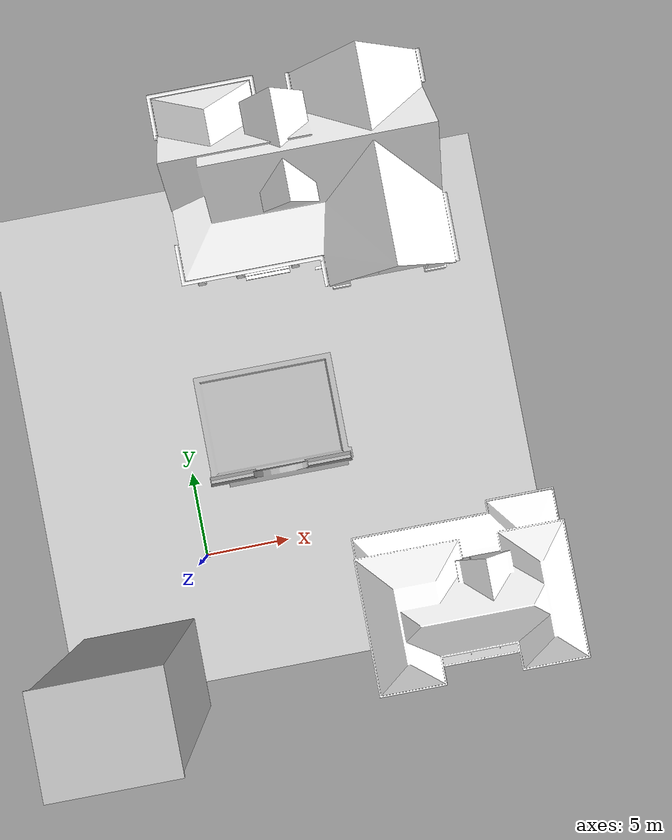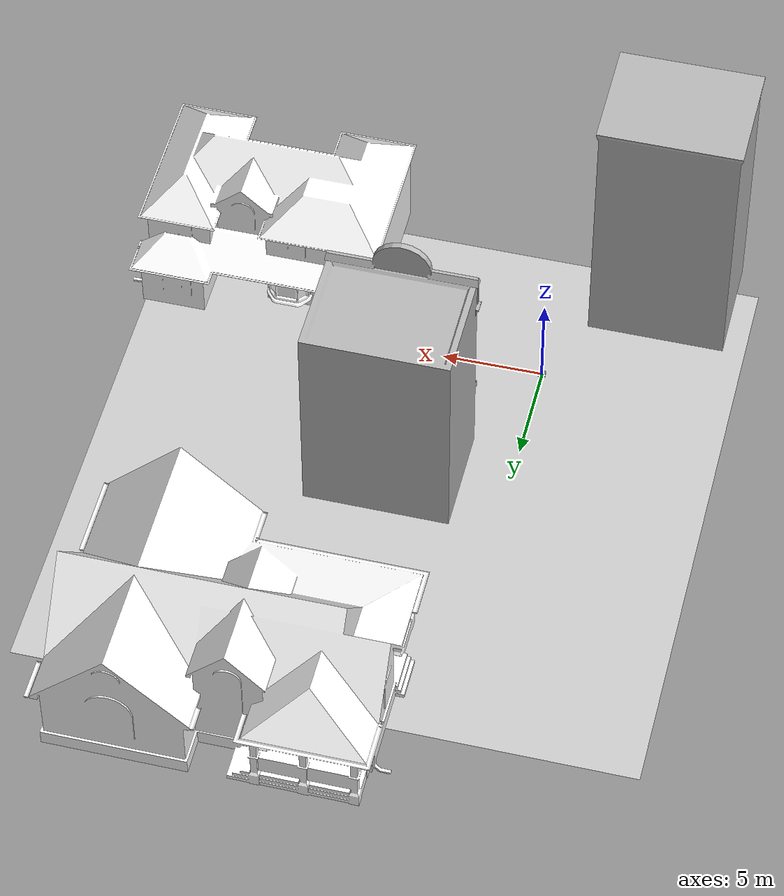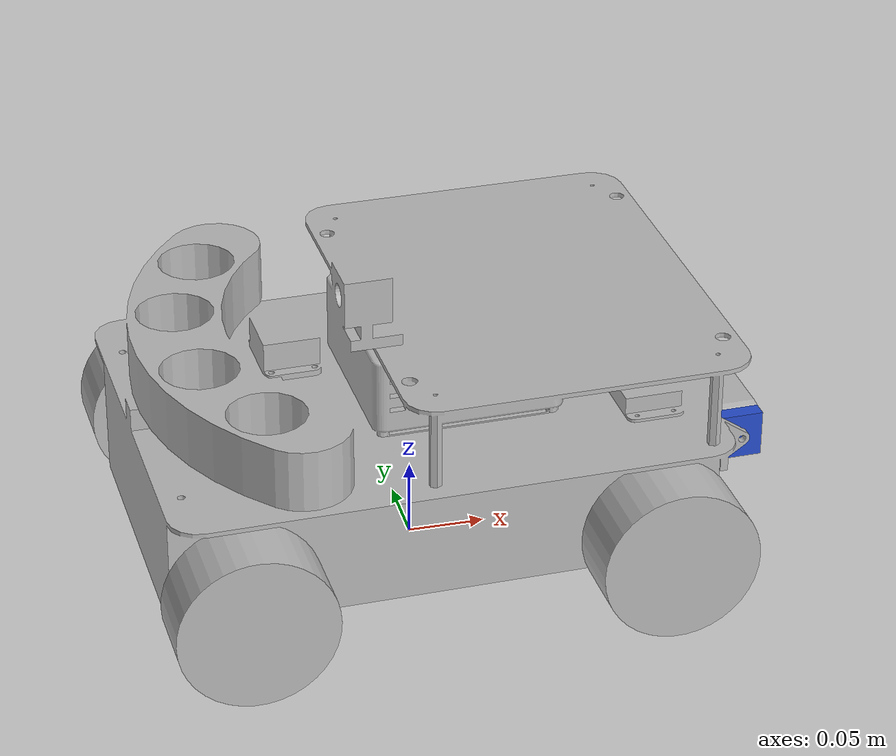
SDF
<sdf version="1.7">
 <world name="default">
  <light name="sun" type="directional">
   <pose>0 0 10 0 -0 0</pose>
   <diffuse>0.8 0.8 0.8 1</diffuse>
   <specular>0.2 0.2 0.2 1</specular>
   <attenuation>
    <range>1000</range>
    <constant>0.9</constant>
    <linear>0.01</linear>
    <quadratic>0.001</quadratic>
   </attenuation>
   <direction>-0.5 0.1 -0.9</direction>
   <spot><inner_angle>0</inner_angle><outer_angle>0</outer_angle><falloff>0</falloff></spot>
  </light>
  <gravity>0 0 -9.8</gravity>
  <magnetic_field>6e-06 2.3e-05 -4.2e-05</magnetic_field>
  <atmosphere type="adiabatic"/>
  <physics type="ode">
   <max_step_size>0.001</max_step_size>
   <real_time_factor>1</real_time_factor>
   <real_time_update_rate>1000</real_time_update_rate>
  </physics>
  <scene><ambient>0.4 0.4 0.4 1</ambient><background>0.7 0.7 0.7 1</background><shadows>1</shadows></scene>
  <spherical_coordinates>
   <surface_model>EARTH_WGS84</surface_model>
   <latitude_deg>0</latitude_deg>
   <longitude_deg>0</longitude_deg>
   <elevation>0</elevation>
   <heading_deg>0</heading_deg>
  </spherical_coordinates>
  <model name="my_ground_plane">
   <static>1</static>
   <link name="link">
    <collision name="collision">
     <geometry><plane><normal>0 0 1</normal><size>10000 10000</size></plane></geometry>
     <surface><friction><ode><mu>100</mu><mu2>50</mu2></ode></friction></surface>
    </collision>
    <visual name="visual">
     <cast_shadows>0</cast_shadows>
     <geometry><plane><normal>0 0 1</normal><size>30 30</size></plane></geometry>
     <material>
      <script>
       <uri>model://my_ground_plane/materials/scripts</uri>
       <uri>model://my_ground_plane/materials/textures/</uri>
       <name>MyGroundPlane/Image</name>
      </script>
     </material>
    </visual>
   </link>
   <pose>5.49276 7.39463 0 0 -0 0</pose>
  </model>
  <model name="law_office">
   <static>1</static>
   <link name="link">
    <collision name="collision">
     <pose>0 0 6.96244 0 -0 0</pose>
     <geometry><box><size>6.84401 5.43165 13.9249</size></box></geometry>
    </collision>
    <visual name="visual">
     <geometry><mesh><uri>model://law_office/meshes/law_office.dae</uri></mesh></geometry>
    </visual>
   </link>
   <pose>-4.97303 -6.37371 0 0 -0 0</pose>
  </model>
  <model name="House 1">
   <static>1</static>
   <link name="link">
    <collision name="collision">
     <geometry><mesh><uri>model://house_1/meshes/house_1.dae</uri><scale>1.5 1.5 1.5</scale></mesh></geometry>
    </collision>
    <visual name="visual">
     <geometry><mesh><uri>model://house_1/meshes/house_1.dae</uri><scale>1.5 1.5 1.5</scale></mesh></geometry>
     <material>
      <script>
       <uri>model://house_1/materials/scripts</uri>
       <uri>model://house_1/materials/textures</uri>
       <name>House_1/Diffuse</name>
      </script>
      <shader type="normal_map_tangent_space"><normal_map>House_1_Normal.png</normal_map></shader>
     </material>
    </visual>
   </link>
   <pose>10.2125 21.1847 0 0 -0 0</pose>
  </model>
  <model name="House 2">
   <static>1</static>
   <link name="link">
    <collision name="collision">
     <geometry><mesh><uri>model://house_2/meshes/house_2.dae</uri><scale>1.5 1.5 1.5</scale></mesh></geometry>
    </collision>
    <visual name="visual">
     <geometry><mesh><uri>model://house_2/meshes/house_2.dae</uri><scale>1.5 1.5 1.5</scale></mesh></geometry>
     <material>
      <script>
       <uri>model://house_2/materials/scripts</uri>
       <uri>model://house_2/materials/textures</uri>
       <uri>model://house_1/materials/textures</uri>
       <name>House_2/Diffuse</name>
      </script>
      <shader type="normal_map_tangent_space">
       <normal_map>model://house_1/materials/textures/House_1_Normal.png</normal_map>
      </shader>
     </material>
    </visual>
   </link>
   <pose>13.8461 -5.31219 0 0 -0 0</pose>
  </model>
  <model name="thrift_shop">
   <static>1</static>
   <link name="link">
    <collision name="collision">
     <pose>0 0 5.69469 0 -0 0</pose>
     <geometry><box><size>7.21297 5.43165 11.3894</size></box></geometry>
    </collision>
    <visual name="visual">
     <pose>0 -0.912491 0 0 -0 0</pose>
     <geometry><mesh><uri>model://thrift_shop/meshes/thrift_shop.dae</uri></mesh></geometry>
    </visual>
   </link>
   <pose>5.95316 7.47278 0 0 -0 0</pose>
  </model>
  <model name="mycar">
   <link name="base_link">
    <inertial>
     <pose>0.032797 0.00331 0.087722 0 -0 0</pose>
     <mass>16.738</mass>
     <inertia>
      <ixx>0.0634912</ixx>
      <ixy>8.58846e-06</ixy>
      <ixz>2.0403e-05</ixz>
      <iyy>0.105707</iyy>
      <iyz>-4.04125e-06</iyz>
      <izz>0.158135</izz>
     </inertia>
    </inertial>
    <collision name="base_link_collision">
     <geometry>
      <mesh><scale>1 1 1</scale><uri>/home/zyh973/catkin_car/src/car_model/meshes/base_link.STL</uri></mesh>
     </geometry>
    </collision>
    <collision name="base_link_fixed_joint_lump__camera_collision_1">
     <pose>0.1935 0 0.072 0 -0 0</pose>
     <geometry><box><size>0.033 0.175 0.03</size></box></geometry>
    </collision>
    <visual name="base_link_visual">
     <geometry>
      <mesh><scale>1 1 1</scale><uri>/home/zyh973/catkin_car/src/car_model/meshes/base_link.STL</uri></mesh>
     </geometry>
    </visual>
    <visual name="base_link_fixed_joint_lump__camera_visual_1">
     <pose>0.1935 0 0.072 0 -0 0</pose>
     <geometry><box><size>0.033 0.175 0.03</size></box></geometry>
     <material>
      <script><name>Gazebo/Blue</name><uri>file://media/materials/scripts/gazebo.material</uri></script>
     </material>
    </visual>
    <visual name="base_link_fixed_joint_lump__support_visual_2">
     <geometry><cylinder><length>0</length><radius>0</radius></cylinder></geometry>
    </visual>
    <visual name="base_link_fixed_joint_lump__laser_visual_3">
     <pose>0.1345 0.035 0.1127 0 -0 0</pose>
     <geometry><cylinder><length>0.0452</length><radius>0.0355</radius></cylinder></geometry>
    </visual>
    <sensor name="camera_node" type="camera">
     <update_rate>30</update_rate>
     <camera name="head">
      <horizontal_fov>1.39626</horizontal_fov>
      <image><width>1280</width><height>720</height><format>R8G8B8</format></image>
      <clip><near>0.02</near><far>300</far></clip>
      <noise><type>gaussian</type><mean>0</mean><stddev>0.007</stddev></noise>
     </camera>
     <plugin name="gazebo_camera" filename="libgazebo_ros_camera.so">
      <alwaysOn>1</alwaysOn>
      <updateRate>0.0</updateRate>
      <cameraName>/camera</cameraName>
      <imageTopicName>image_raw</imageTopicName>
      <cameraInfoTopicName>camera_info</cameraInfoTopicName>
      <frameName>camera</frameName>
      <hackBaseline>0.07</hackBaseline>
      <distortionK1>0.0</distortionK1>
      <distortionK2>0.0</distortionK2>
      <distortionK3>0.0</distortionK3>
      <distortionT1>0.0</distortionT1>
      <distortionT2>0.0</distortionT2>
      <robotNamespace>/</robotNamespace>
     </plugin>
     <pose>0.1935 0 0.072 0 -0 0</pose>
    </sensor>
    <sensor name="rplidar" type="ray">
     <visualize>1</visualize>
     <update_rate>5.5</update_rate>
     <ray>
      <scan>
       <horizontal>
        <samples>64</samples>
        <resolution>1</resolution>
        <min_angle>-3</min_angle>
        <max_angle>3</max_angle>
       </horizontal>
       <vertical><samples>1</samples><min_angle>0</min_angle><max_angle>0</max_angle></vertical>
      </scan>
      <range><min>0.1</min><max>30</max><resolution>0.01</resolution></range>
      <noise><type>gaussian</type><mean>0</mean><stddev>0.01</stddev></noise>
     </ray>
     <plugin name="gazebo_rplidar" filename="libgazebo_ros_laser.so">
      <topicName>/scan</topicName>
      <frameName>laser</frameName>
      <robotNamespace>/</robotNamespace>
     </plugin>
     <pose>0.1345 0.035 0.1127 0 -0 0</pose>
    </sensor>
   </link>
   <joint name="wheel_lb_joint" type="revolute">
    <pose relative_to="base_link">-0.134 0.15675 0.0278 0 -0 0</pose>
    <parent>base_link</parent>
    <child>wheel_lb_Link</child>
    <axis>
     <xyz>0 -1 0</xyz>
     <limit><lower>-1e+16</lower><upper>1e+16</upper></limit>
     <dynamics><spring_reference>0</spring_reference><spring_stiffness>0</spring_stiffness></dynamics>
    </axis>
   </joint>
   <link name="wheel_lb_Link">
    <pose relative_to="wheel_lb_joint">0 0 0 0 -0 0</pose>
    <inertial>
     <pose>-0 -0.02275 0 0 -0 0</pose>
     <mass>2.8773</mass>
     <inertia>
      <ixx>0.0023527</ixx>
      <ixy>1.0128e-17</ixy>
      <ixz>-3.5376e-32</ixz>
      <iyy>0.0037126</iyy>
      <iyz>-4.7481e-18</iyz>
      <izz>0.0023527</izz>
     </inertia>
    </inertial>
    <collision name="wheel_lb_Link_collision">
     <geometry>
      <mesh><scale>1 1 1</scale><uri>/home/zyh973/catkin_car/src/car_model/meshes/wheel_lb_Link.STL</uri></mesh>
     </geometry>
    </collision>
    <visual name="wheel_lb_Link_visual">
     <geometry>
      <mesh><scale>1 1 1</scale><uri>/home/zyh973/catkin_car/src/car_model/meshes/wheel_lb_Link.STL</uri></mesh>
     </geometry>
    </visual>
   </link>
   <joint name="wheel_lf_joint" type="revolute">
    <pose relative_to="base_link">0.134 0.15675 0.0278 0 -0 0</pose>
    <parent>base_link</parent>
    <child>wheel_lf_Link</child>
    <axis>
     <xyz>0 -1 0</xyz>
     <limit><lower>-1e+16</lower><upper>1e+16</upper></limit>
     <dynamics><spring_reference>0</spring_reference><spring_stiffness>0</spring_stiffness></dynamics>
    </axis>
   </joint>
   <link name="wheel_lf_Link">
    <pose relative_to="wheel_lf_joint">0 0 0 0 -0 0</pose>
    <inertial>
     <pose>-0 -0.02275 0 0 -0 0</pose>
     <mass>2.8773</mass>
     <inertia>
      <ixx>0.0023527</ixx>
      <ixy>1.0208e-17</ixy>
      <ixz>2.3485e-21</ixz>
      <iyy>0.0037126</iyy>
      <iyz>-4.7478e-18</iyz>
      <izz>0.0023527</izz>
     </inertia>
    </inertial>
    <collision name="wheel_lf_Link_collision">
     <geometry>
      <mesh><scale>1 1 1</scale><uri>/home/zyh973/catkin_car/src/car_model/meshes/wheel_lf_Link.STL</uri></mesh>
     </geometry>
    </collision>
    <visual name="wheel_lf_Link_visual">
     <geometry>
      <mesh><scale>1 1 1</scale><uri>/home/zyh973/catkin_car/src/car_model/meshes/wheel_lf_Link.STL</uri></mesh>
     </geometry>
    </visual>
   </link>
   <joint name="wheel_rb_joint" type="revolute">
    <pose relative_to="base_link">-0.134 -0.15675 0.0278 0 -0 0</pose>
    <parent>base_link</parent>
    <child>wheel_rb_Link</child>
    <axis>
     <xyz>0 -1 0</xyz>
     <limit><lower>-1e+16</lower><upper>1e+16</upper></limit>
     <dynamics><spring_reference>0</spring_reference><spring_stiffness>0</spring_stiffness></dynamics>
    </axis>
   </joint>
   <link name="wheel_rb_Link">
    <pose relative_to="wheel_rb_joint">0 0 0 0 -0 0</pose>
    <inertial>
     <pose>0 0.02275 -0 0 -0 0</pose>
     <mass>2.8773</mass>
     <inertia>
      <ixx>0.0023527</ixx>
      <ixy>1.0128e-17</ixy>
      <ixz>-3.5357e-32</ixz>
      <iyy>0.0037126</iyy>
      <iyz>-4.7481e-18</iyz>
      <izz>0.0023527</izz>
     </inertia>
    </inertial>
    <collision name="wheel_rb_Link_collision">
     <geometry>
      <mesh><scale>1 1 1</scale><uri>/home/zyh973/catkin_car/src/car_model/meshes/wheel_rb_Link.STL</uri></mesh>
     </geometry>
    </collision>
    <visual name="wheel_rb_Link_visual">
     <geometry>
      <mesh><scale>1 1 1</scale><uri>/home/zyh973/catkin_car/src/car_model/meshes/wheel_rb_Link.STL</uri></mesh>
     </geometry>
    </visual>
   </link>
   <joint name="wheel_rf_joint" type="revolute">
    <pose relative_to="base_link">0.134 -0.15675 0.0278 0 -0 0</pose>
    <parent>base_link</parent>
    <child>wheel_rf_Link</child>
    <axis>
     <xyz>0 -1 0</xyz>
     <limit><lower>-1e+16</lower><upper>1e+16</upper></limit>
     <dynamics><spring_reference>0</spring_reference><spring_stiffness>0</spring_stiffness></dynamics>
    </axis>
   </joint>
   <link name="wheel_rf_Link">
    <pose relative_to="wheel_rf_joint">0 0 0 0 -0 0</pose>
    <inertial>
     <pose>0 0.02275 -0 0 -0 0</pose>
     <mass>2.8773</mass>
     <inertia>
      <ixx>0.0023527</ixx>
      <ixy>1.0128e-17</ixy>
      <ixz>-3.5357e-32</ixz>
      <iyy>0.0037126</iyy>
      <iyz>-4.7481e-18</iyz>
      <izz>0.0023527</izz>
     </inertia>
    </inertial>
    <collision name="wheel_rf_Link_collision">
     <geometry>
      <mesh><scale>1 1 1</scale><uri>/home/zyh973/catkin_car/src/car_model/meshes/wheel_rf_Link.STL</uri></mesh>
     </geometry>
    </collision>
    <visual name="wheel_rf_Link_visual">
     <geometry>
      <mesh><scale>1 1 1</scale><uri>/home/zyh973/catkin_car/src/car_model/meshes/wheel_rf_Link.STL</uri></mesh>
     </geometry>
    </visual>
   </link>
   <plugin name="skid_steer_drive_controller" filename="libgazebo_ros_planar_move.so">
    <rosDebugLevel>Debug</rosDebugLevel>
    <publishWheelTF>1</publishWheelTF>
    <robotNamespace>/</robotNamespace>
    <publishTf>1</publishTf>
    <publishWheelJointState>1</publishWheelJointState>
    <alwaysOn>1</alwaysOn>
    <updateRate>100.0</updateRate>
    <legacyMode>1</legacyMode>
    <leftFrontJoint>wheel_lf_joint</leftFrontJoint>
    <rightFrontJoint>wheel_rf_joint</rightFrontJoint>
    <leftRearJoint>wheel_lb_joint</leftRearJoint>
    <rightRearJoint>wheel_rb_joint</rightRearJoint>
    <wheelSeparation>4.65</wheelSeparation>
    <wheelDiameter>1.5</wheelDiameter>
    <broadcastTF>1</broadcastTF>
    <wheelTorque>100</wheelTorque>
    <wheelAcceleration>1.8</wheelAcceleration>
    <commandTopic>cmd_vel</commandTopic>
    <odometryFrame>odom</odometryFrame>
    <odometryTopic>odom</odometryTopic>
    <robotBaseFrame>base_link</robotBaseFrame>
   </plugin>
   <static>0</static>
   <plugin name="p3d_base_controller" filename="libgazebo_ros_p3d.so">
    <alwaysOn>1</alwaysOn>
    <updateRate>100.0</updateRate>
    <bodyName>base_link</bodyName>
    <topicName>base_pose_ground_truth</topicName>
    <gaussianNoise>0.01</gaussianNoise>
    <frameName>world</frameName>
    <xyzOffsets>0 0 0</xyzOffsets>
    <rpyOffsets>0 0 0</rpyOffsets>
    <robotNamespace>/</robotNamespace>
   </plugin>
   <pose>-0.003824 -0.00652 0.022856 -2e-06 0.000217 0.039626</pose>
  </model>
 </world>
</sdf>
